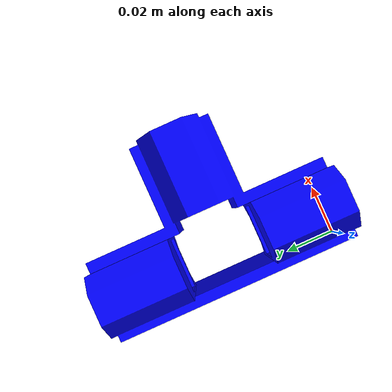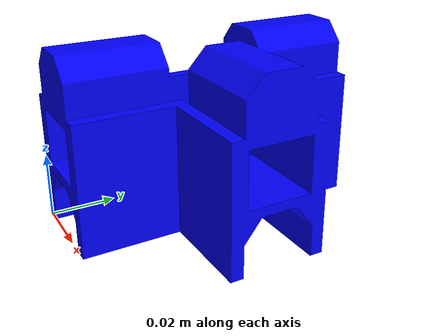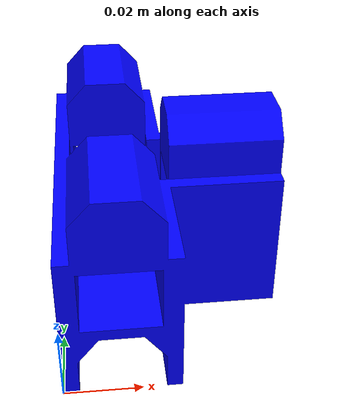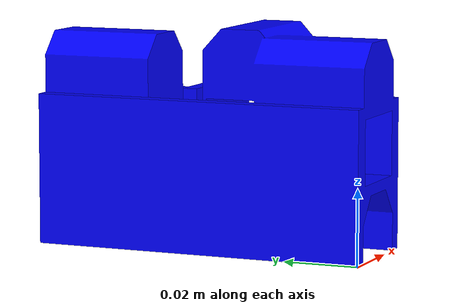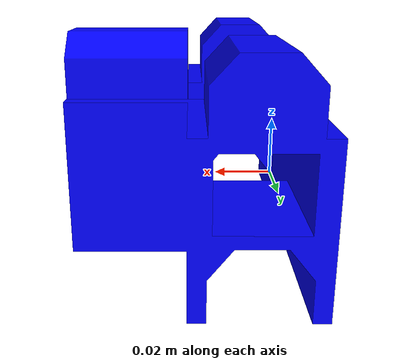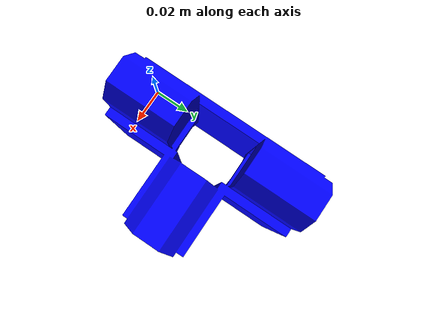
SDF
<?xml version="1.0" ?>
<sdf version="1.5">
  <model name='T_brick'>
    <pose>0 0 0 0 0 0</pose>
    <link name='link'>
      <inertial>
        <mass>0.15</mass>
        <pose>0.025 0.045 0.02 0 0 0</pose>
        <inertia>
          <ixx>3.0e-4</ixx>
          <iyy>6.0e-4</iyy>
          <izz>7.0e-4</izz>
          <ixy>0</ixy>
          <ixz>0</ixz>
          <iyz>0</iyz>
        </inertia>
      </inertial>
      <visual name='T_brick_visual'>
        <pose>0 0 0 0 0 0</pose>
        <geometry>
          <mesh>
            <uri>model://T_brick/T_brick.STL</uri>
            <scale>0.001 0.001 0.001</scale>
          </mesh>
        </geometry>
        <material><ambient>0 0 1 1</ambient><diffuse>0 0 1 1</diffuse></material>
      </visual>

      <collision name='wall_back'>
        <pose>0.002 0.045 0.02 0 0 0</pose>
        <geometry><box><size>0.004 0.09 0.04</size></box></geometry>
      </collision>

      <collision name='wall_front_bot'>
        <pose>0.028 0.015 0.02 0 0 0</pose>
        <geometry><box><size>0.004 0.03 0.04</size></box></geometry>
      </collision>
      <collision name='wall_front_top'>
        <pose>0.028 0.075 0.02 0 0 0</pose>
        <geometry><box><size>0.004 0.03 0.04</size></box></geometry>
      </collision>

      <collision name='wall_leg_bot'>
        <pose>0.045 0.032 0.02 0 0 0</pose>
        <geometry><box><size>0.03 0.004 0.04</size></box></geometry>
      </collision>
      <collision name='wall_leg_top'>
        <pose>0.045 0.058 0.02 0 0 0</pose>
        <geometry><box><size>0.03 0.004 0.04</size></box></geometry>
      </collision>
      <collision name='roof_bar'>
         <pose>0.015 0.045 0.039 0 0 0</pose>
         <geometry><box><size>0.03 0.09 0.002</size></box></geometry>
      </collision>
      <collision name='roof_leg'>
         <pose>0.045 0.045 0.039 0 0 0</pose>
         <geometry><box><size>0.03 0.03 0.002</size></box></geometry>
      </collision>

      <collision name='stud_bar_bot'>
        <pose>0.015 0.015 0.044 0 0 0</pose>
        <geometry><box><size>0.022 0.022 0.012</size></box></geometry>
      </collision>

      <collision name='stud_bar_top'>
        <pose>0.015 0.075 0.044 0 0 0</pose>
        <geometry><box><size>0.022 0.022 0.012</size></box></geometry>
      </collision>

      <collision name='stud_leg'>
        <pose>0.045 0.045 0.044 0 0 0</pose>
        <geometry><box><size>0.022 0.022 0.012</size></box></geometry>
      </collision>

      <collision name="grasp_proxy">
        <pose>0.025 0.045 0.02 0 0 0</pose>
        <geometry>
          <box>
            <size>0.06 0.09 0.04</size>
          </box>
          </geometry>
          <surface>
            <friction>
              <ode>
                <mu>1.5</mu>
                <mu2>1.5</mu2>
              </ode>
            </friction>
            <contact>
              <ode>
                <kp>1e6</kp>
                <kd>1.0</kd>
              </ode>
            </contact>
          </surface>
      </collision>

    </link>
  </model>
</sdf>
